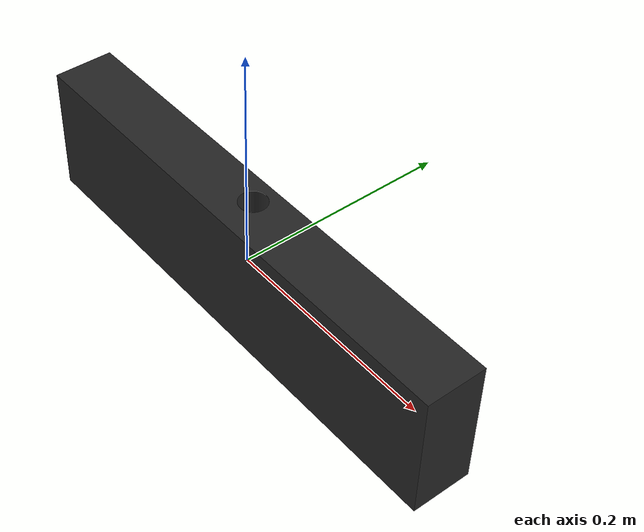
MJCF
<mujoco model="rocker">
  <default>
    <default class="visual">
      <geom group="2" type="mesh" contype="0" conaffinity="0"/>
    </default>
    <default class="collision">
      <geom group="3" type="mesh"/>
    </default>
  </default>
  <asset>
    <material name="mtl_rocker" specular="0.20000000000000004" shininess="1.0" rgba="0.14901961 0.14901961 0.14901961 1.0"/>
    <mesh file="rocker.obj"/>
  </asset>
  <worldbody>
    <body name="rocker">
      <geom material="mtl_rocker" mesh="rocker" class="visual"/>
      <geom mesh="rocker" class="collision"/>
    </body>
  </worldbody>
</mujoco>
